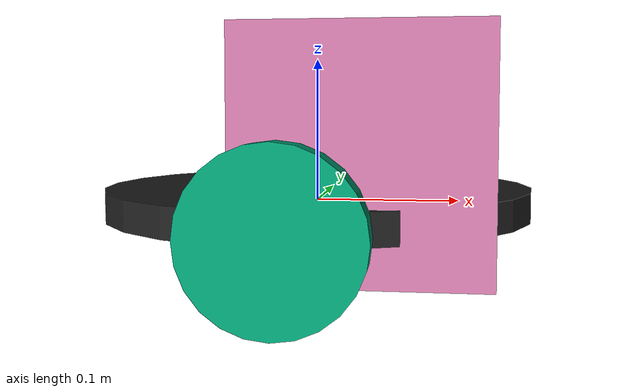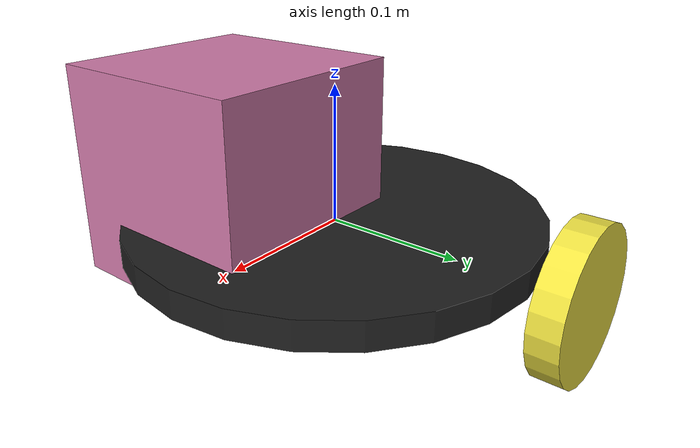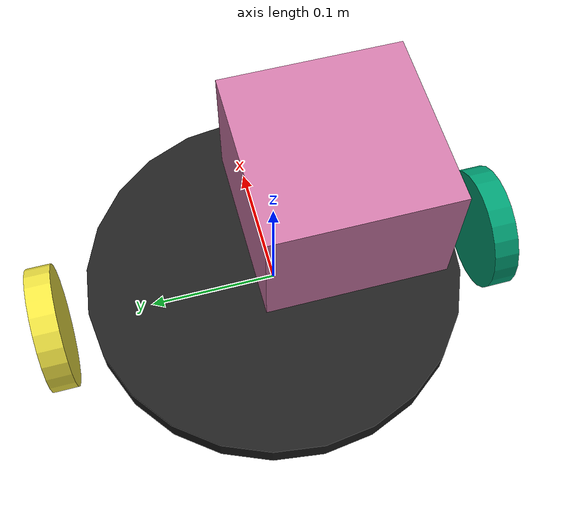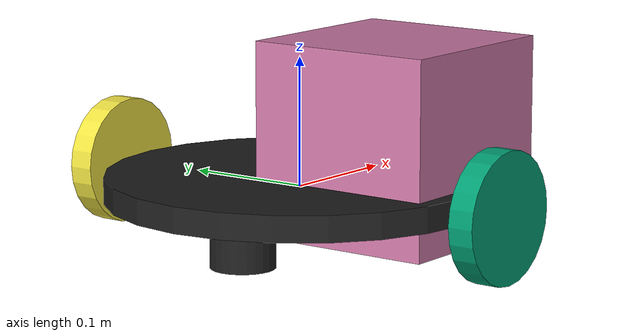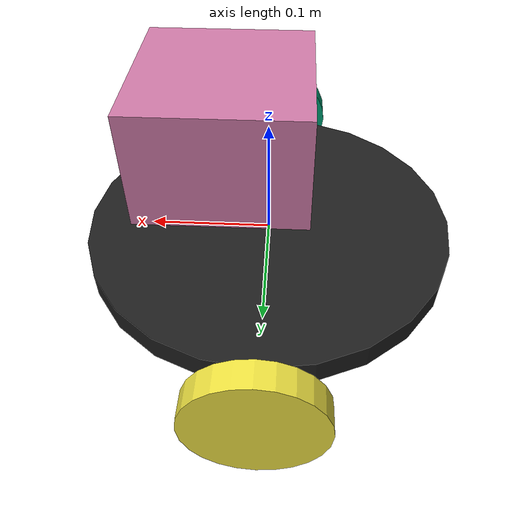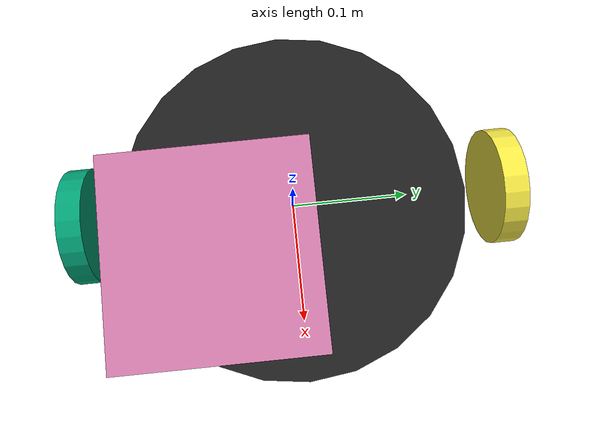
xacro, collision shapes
<?xml version='1.0'?>

<robot name="roomba_bot" xmlns:xacro="http://www.ros.org/wiki/xacro">
<xacro:include filename="$(find roomba_robot)/roomba_description/urdf/roomba_bot.gazebo" />

<link name="robot_footprint"></link>

  <joint name="robot_footprint_joint" type="fixed">
    <origin xyz="0 0 0" rpy="0 0 0" />
    <parent link="robot_footprint"/>
    <child link="base_link" />
  </joint>

   <link name='base_link'>
    <pose>0 0 0.1 0 0 0</pose>
    <inertial>
      <mass value="5.0"/>
      <origin xyz="0.0 0 0" rpy=" 0 0 0"/>
      <inertia
          ixx="0.15" ixy="0" ixz="0"
          iyy="0.15" iyz="0"
          izz="0.05"
       />
    </inertial>
    <collision name='collision'>
       <origin xyz="0 0 0" rpy=" 0 0 0"/>
       <geometry>
          <cylinder length="0.02" radius="0.15"/>
       </geometry>
    </collision>
    <visual name='base_link_visual'>
       <origin xyz="0 0 0" rpy=" 0 0 0"/>
       <geometry>
         <mesh filename="package://roomba_robot/roomba_description/meshes/create_1.dae" scale="1.0 1.0 1.0"/>
       </geometry>
         <material name="Black">

          </material>
     </visual>

    <collision name='back_caster_collision'>
      <origin xyz="-0.07 0 -0.03" rpy=" 0 0 0"/>
      <geometry>
       <cylinder length="0.04" radius="0.025"/>
      </geometry>
      <surface>
        <friction>
          <ode>
            <mu>0</mu>
            <mu2>0</mu2>
            <slip1>0.5</slip1>
            <slip2>0.5</slip2>
          </ode>
        </friction>
      </surface>
    </collision>

    <visual name='back_caster_visual'>
      <origin xyz="-0.07 0 -0.03" rpy=" 0 0 0"/>
      <geometry>
        <cylinder length="0.04" radius="0.025"/>
      </geometry>
    </visual>

    <collision name='front_caster_collision'>
      <origin xyz="0.07 0 -0.03" rpy=" 0 0 0"/>
      <geometry>
        <cylinder length="0.04" radius="0.025"/>
      </geometry>
      <surface>
        <friction>
          <ode>
            <mu>0</mu>
            <mu2>0</mu2>
            <slip1>0.8</slip1>
            <slip2>0.8</slip2>
          </ode>
        </friction>
      </surface>
    </collision>

    <visual name='front_caster_visual'>
      <origin xyz="0.07 0 -0.03" rpy=" 0 0 0"/>
      <geometry>
         <cylinder length="0.04" radius="0.025"/>
      </geometry>
    </visual>

  </link>

   <link name='right_wheel'>
    <pose>0 0 0.1 0 0 0</pose>

    <inertial>
      <mass value="2.5"/>
      <origin xyz="0.0 0 0" rpy=" 0 1.5707 1.5707"/>
      <inertia
          ixx="0.007" ixy="0" ixz="0"
          iyy="0.007" iyz="0"
          izz="0.00125"
      />
    </inertial>
     <collision name='collision'>
     <origin xyz="0.0 0 0" rpy=" 0 1.5707 1.5707"/>
      <geometry>
        <cylinder length="0.02" radius="0.05"/>
      </geometry>
    </collision>

    <visual name='right_wheel_visual'>
      <origin xyz="0.0 0 0" rpy=" 0 1.5707 1.5707"/>
      <geometry>
        <cylinder length="0.02" radius="0.05"/>
      </geometry>
    </visual>

    </link>

    <link name='left_wheel'>
    <pose>0 0 0.1 0 0 0</pose>

    <inertial>
      <mass value="2.5"/>
      <origin xyz="0.0 0 0" rpy=" 0 1.5707 1.5707"/>
      <inertia
          ixx="0.007" ixy="0" ixz="0"
          iyy="0.007" iyz="0"
          izz="0.00125"
      />
    </inertial>
     <collision name='collision'>
     <origin xyz="0.0 0 0" rpy=" 0 1.5707 1.5707"/>
      <geometry>
        <cylinder length="0.02" radius="0.05"/>
      </geometry>
    </collision>

    <visual name='left_wheel_visual'>
      <origin xyz="0.0 0 0" rpy=" 0 1.5707 1.5707"/>
      <geometry>
        <cylinder length="0.02" radius="0.05"/>
      </geometry>

    </visual>

    </link>

    <joint type="continuous" name="left_wheel_hinge">
    <origin xyz="0 0.18 0" rpy="0 0 0"/>
    <child link="left_wheel"/>
    <parent link="base_link"/>
    <axis xyz="0 1 0" rpy="0 0 0"/>
    <limit effort="10000" velocity="1000"/>
    <joint_properties damping="1.0" friction="1.0"/>
  </joint>

    <joint type="continuous" name="right_wheel_hinge">
    <origin xyz="0 -0.18 0" rpy="0 0 0"/>
    <child link="right_wheel"/>
    <parent link="base_link"/>
    <axis xyz="0 1 0" rpy="0 0 0"/>
    <limit effort="10000" velocity="1000"/>
    <joint_properties damping="1.0" friction="1.0"/>
  </joint>

    <link name='camera_link'>
    <pose>0.0 0.1 0.0 0 0 0</pose>
    <inertial>
      <mass value="0.05"/>
      <origin xyz="0.0 0.0 0" rpy=" 0 0 0"/>
      <inertia
          ixx="1e-6" ixy="0" ixz="0"
          iyy="1e-6" iyz="0"
          izz="1e-6"
      />
    </inertial>
     <collision name='collision'>
     <origin xyz="0.0 0.0 0.0" rpy=" 0 1.5707 1.5707"/>
      <geometry>
        <box size=".02 .02 .02"/>
      </geometry>
    </collision>
     <visual name='camera_visual'>
      <origin xyz="0.0 0.0 0.0" rpy=" 0 1.5707 1.5707"/>
      <geometry>
        <box size=".02 .02 .02"/>
      </geometry>
    </visual>
   </link>

<joint type="fixed" name="camera_joint">
    <origin xyz="0.1 0.0 0.0" rpy="0 0 0"/>
    <child link="camera_link"/>
    <parent link="base_link"/>
    <axis xyz="0 1 0" rpy="0 0 0"/>
  </joint>

<link name="rgbd_frame"></link>
<joint name="rgbd_joint" type="fixed">
   <origin xyz="0 0 0" rpy="-1.5707 0 -1.5707"/>
   <parent link="camera_link"/>
   <child link="rgbd_frame"/>
</joint>

   <link name='hokuyo'>
    <pose>0.02 -0.03 0.02 0 0 0</pose>
    <inertial>
      <mass value="0.05"/>
      <origin xyz="0.0 0 0" rpy=" 0 0 0"/>
      <inertia
          ixx="1e-6" ixy="0" ixz="0"
          iyy="1e-6" iyz="0"
          izz="1e-6"
      />
    </inertial>
     <collision name='collision'>
     <origin xyz="0.02 -0.03 0.02" rpy=" 0 0 0"/>
      <geometry>
        <box size=".15 .15 .15"/>
      </geometry>
    </collision>
     <visual name='hokuyo_visual'>
      <origin xyz="0.02 0.03 0.02" rpy=" 0 0 0"/>
      <geometry>
        <mesh filename="package://roomba_robot/roomba_description/meshes/hokuyo.dae"/>
      </geometry>
    </visual>
   </link>

<joint type="fixed" name="hokuyo_joint">
    <origin xyz="0.02 -0.03 0.02" rpy="0 0 0"/>
    <child link="hokuyo"/>
    <parent link="base_link"/>
    <axis xyz="0 1 0" rpy="0 0 0"/>
  </joint>

  </robot>
